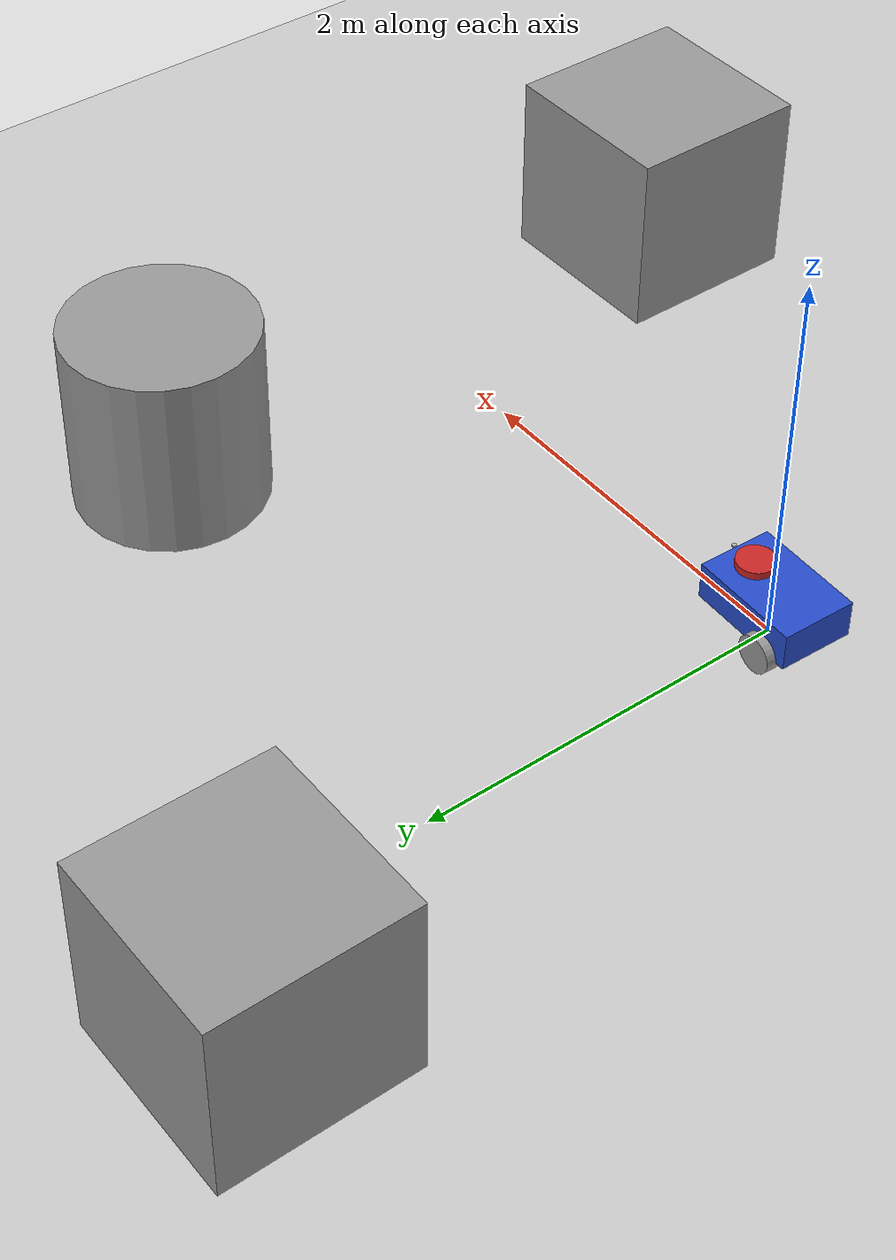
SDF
<sdf version="1.7">
 <world name="default">
  <light name="sun" type="directional">
   <pose>0 0 10 0 -0 0</pose>
   <diffuse>0.8 0.8 0.8 1</diffuse>
   <specular>0.2 0.2 0.2 1</specular>
   <attenuation>
    <range>1000</range>
    <constant>0.9</constant>
    <linear>0.01</linear>
    <quadratic>0.001</quadratic>
   </attenuation>
   <direction>-0.5 0.1 -0.9</direction>
   <spot><inner_angle>0</inner_angle><outer_angle>0</outer_angle><falloff>0</falloff></spot>
  </light>
  <model name="ground_plane">
   <static>1</static>
   <link name="link">
    <collision name="collision">
     <geometry><plane><normal>0 0 1</normal><size>100 100</size></plane></geometry>
     <surface>
      <contact><collide_bitmask>65535</collide_bitmask></contact>
      <friction><ode><mu>100</mu><mu2>50</mu2></ode></friction>
     </surface>
    </collision>
    <visual name="visual">
     <cast_shadows>0</cast_shadows>
     <geometry><plane><normal>0 0 1</normal><size>100 100</size></plane></geometry>
     <material>
      <script><uri>file://media/materials/scripts/gazebo.material</uri><name>Gazebo/Grey</name></script>
     </material>
    </visual>
   </link>
  </model>
  <gravity>0 0 -9.8</gravity>
  <magnetic_field>6e-06 2.3e-05 -4.2e-05</magnetic_field>
  <atmosphere type="adiabatic"/>
  <physics type="ode">
   <max_step_size>0.001</max_step_size>
   <real_time_factor>1</real_time_factor>
   <real_time_update_rate>1000</real_time_update_rate>
  </physics>
  <scene><ambient>0.4 0.4 0.4 1</ambient><background>0.7 0.7 0.7 1</background><shadows>1</shadows></scene>
  <audio><device>default</device></audio>
  <spherical_coordinates>
   <surface_model>EARTH_WGS84</surface_model>
   <latitude_deg>0</latitude_deg>
   <longitude_deg>0</longitude_deg>
   <elevation>0</elevation>
   <heading_deg>0</heading_deg>
  </spherical_coordinates>
  <model name="lidarbot">
   <link name="base_link">
    <inertial>
     <pose>0.038889 0 0.138889 0 -0 0</pose>
     <mass>2.7</mass>
     <inertia>
      <ixx>0.129967</ixx>
      <ixy>0</ixy>
      <ixz>-0.0116667</ixz>
      <iyy>0.141633</iyy>
      <iyz>0</iyz>
      <izz>0.123667</izz>
     </inertia>
    </inertial>
    <collision name="base_link_fixed_joint_lump__chassis_link_collision">
     <pose>0 0 0.2 0 -0 0</pose>
     <geometry><box><size>0.6 0.4 0.2</size></box></geometry>
    </collision>
    <collision name="base_link_fixed_joint_lump__caster_wheel_link_collision_1">
     <pose>0.15 0 0.1 0 -0 0</pose>
     <geometry><sphere><radius>0.1</radius></sphere></geometry>
     <surface><friction><ode><mu>0.001</mu><mu2>0.001</mu2></ode></friction></surface>
    </collision>
    <collision name="base_link_fixed_joint_lump__lidar_link_collision_2">
     <pose>0.15 0 0.29 0 -0 0</pose>
     <geometry><cylinder><length>0.1</length><radius>0.1</radius></cylinder></geometry>
    </collision>
    <visual name="base_link_fixed_joint_lump__chassis_link_visual">
     <pose>0 0 0.2 0 -0 0</pose>
     <geometry><box><size>0.6 0.4 0.2</size></box></geometry>
     <material>
      <script><name>Gazebo/Blue</name><uri>file://media/materials/scripts/gazebo.material</uri></script>
     </material>
    </visual>
    <visual name="base_link_fixed_joint_lump__camera_link_visual_1">
     <pose>0.305 0 0.31 0 -0 0</pose>
     <geometry><box><size>0.02 0.02 0.01</size></box></geometry>
    </visual>
    <visual name="base_link_fixed_joint_lump__caster_wheel_link_visual_2">
     <pose>0.15 0 0.1 0 -0 0</pose>
     <geometry><sphere><radius>0.1</radius></sphere></geometry>
     <material>
      <script><name>Gazebo/Black</name><uri>file://media/materials/scripts/gazebo.material</uri></script>
     </material>
    </visual>
    <visual name="base_link_fixed_joint_lump__lidar_link_visual_3">
     <pose>0.15 0 0.29 0 -0 0</pose>
     <geometry><cylinder><length>0.1</length><radius>0.1</radius></cylinder></geometry>
     <material>
      <script><name>Gazebo/Red</name><uri>file://media/materials/scripts/gazebo.material</uri></script>
     </material>
    </visual>
    <sensor name="laser" type="ray">
     <visualize>0</visualize>
     <update_rate>10</update_rate>
     <ray>
      <scan>
       <horizontal>
        <samples>360</samples>
        <resolution>1</resolution>
        <min_angle>-3.14</min_angle>
        <max_angle>3.14</max_angle>
       </horizontal>
       <vertical><samples>1</samples><min_angle>0</min_angle><max_angle>0</max_angle></vertical>
      </scan>
      <range><min>0.3</min><max>12</max><resolution>0.01</resolution></range>
     </ray>
     <plugin name="laser_controller" filename="libgazebo_ros_ray_sensor.so">
      <ros><argument>~/out:=scan</argument></ros>
      <output_type>sensor_msgs/LaserScan</output_type>
      <frame_name>lidar_link</frame_name>
     </plugin>
     <pose>0.15 0 0.31 0 -0 0</pose>
    </sensor>
    <sensor name="camera" type="depth">
     <visualize>1</visualize>
     <update_rate>10</update_rate>
     <camera>
      <horizontal_fov>1.089</horizontal_fov>
      <image><format>B8G8R8</format><width>640</width><height>480</height></image>
      <clip><near>0.05</near><far>8</far></clip>
     </camera>
     <plugin name="camera_controller" filename="libgazebo_ros_camera.so">
      <frame_name>camera_link_optical</frame_name>
      <min_depth>0.1</min_depth>
      <max_depth>100</max_depth>
     </plugin>
     <pose>0.15 0 0.31 0 -0 0</pose>
    </sensor>
   </link>
   <joint name="left_wheel_chassis_joint" type="revolute">
    <pose relative_to="base_link">-0.15 0.2 0.1 0 -0 0</pose>
    <parent>base_link</parent>
    <child>left_wheel_link</child>
    <axis>
     <xyz>0 1 0</xyz>
     <limit><lower>-1e+16</lower><upper>1e+16</upper></limit>
     <dynamics><spring_reference>0</spring_reference><spring_stiffness>0</spring_stiffness></dynamics>
    </axis>
   </joint>
   <link name="left_wheel_link">
    <pose relative_to="left_wheel_chassis_joint">0 0 0 0 -0 0</pose>
    <inertial>
     <mass>0.3</mass>
     <inertia><ixx>0.005</ixx><ixy>0</ixy><ixz>0</ixz><iyy>0.005</iyy><iyz>0</iyz><izz>0.005</izz></inertia>
    </inertial>
    <collision name="left_wheel_link_collision">
     <pose>0 0 0 1.57 -0 0</pose>
     <geometry><cylinder><length>0.1</length><radius>0.1</radius></cylinder></geometry>
    </collision>
    <visual name="left_wheel_link_visual">
     <pose>0 0 0 1.57 -0 0</pose>
     <geometry><cylinder><length>0.1</length><radius>0.1</radius></cylinder></geometry>
     <material>
      <script><name>Gazebo/Grey</name><uri>file://media/materials/scripts/gazebo.material</uri></script>
     </material>
    </visual>
   </link>
   <joint name="right_wheel_chassis_joint" type="revolute">
    <pose relative_to="base_link">-0.15 -0.2 0.1 3.14 -0 0</pose>
    <parent>base_link</parent>
    <child>right_wheel_link</child>
    <axis>
     <xyz>0 -1 0</xyz>
     <limit><lower>-1e+16</lower><upper>1e+16</upper></limit>
     <dynamics><spring_reference>0</spring_reference><spring_stiffness>0</spring_stiffness></dynamics>
    </axis>
   </joint>
   <link name="right_wheel_link">
    <pose relative_to="right_wheel_chassis_joint">0 0 0 0 -0 0</pose>
    <inertial>
     <mass>0.3</mass>
     <inertia><ixx>0.005</ixx><ixy>0</ixy><ixz>0</ixz><iyy>0.005</iyy><iyz>0</iyz><izz>0.005</izz></inertia>
    </inertial>
    <collision name="right_wheel_link_collision">
     <pose>0 0 0 1.57 -0 0</pose>
     <geometry><cylinder><length>0.1</length><radius>0.1</radius></cylinder></geometry>
    </collision>
    <visual name="right_wheel_link_visual">
     <pose>0 0 0 1.57 -0 0</pose>
     <geometry><cylinder><length>0.1</length><radius>0.1</radius></cylinder></geometry>
     <material>
      <script><name>Gazebo/Grey</name><uri>file://media/materials/scripts/gazebo.material</uri></script>
     </material>
    </visual>
   </link>
   <static>0</static>
   <plugin name="gazebo_ros2_control" filename="libgazebo_ros2_control.so">
    <parameters>/home/user/ros2_ws/src/lidarbot1/config/controllers.yaml</parameters>
   </plugin>
   <pose>-0.00837 -0.010667 4.5e-05 -0.000198 0.000298 -0.033272</pose>
  </model>
  <model name="unit_box">
   <pose>2.67048 -1.54138 0.499995 0 1e-05 0</pose>
   <link name="link">
    <inertial>
     <mass>1</mass>
     <inertia>
      <ixx>0.166667</ixx>
      <ixy>0</ixy>
      <ixz>0</ixz>
      <iyy>0.166667</iyy>
      <iyz>0</iyz>
      <izz>0.166667</izz>
     </inertia>
    </inertial>
    <collision name="collision"><geometry><box><size>1 1 1</size></box></geometry></collision>
    <visual name="visual">
     <geometry><box><size>1 1 1</size></box></geometry>
     <material>
      <script><name>Gazebo/Grey</name><uri>file://media/materials/scripts/gazebo.material</uri></script>
     </material>
    </visual>
   </link>
  </model>
  <model name="unit_cylinder">
   <pose>2.55942 1.67399 0.499993 -3e-06 -4e-06 -0</pose>
   <link name="link">
    <inertial>
     <mass>1</mass>
     <inertia><ixx>0.145833</ixx><ixy>0</ixy><ixz>0</ixz><iyy>0.145833</iyy><iyz>0</iyz><izz>0.125</izz></inertia>
    </inertial>
    <collision name="collision">
     <geometry><cylinder><radius>0.5</radius><length>1</length></cylinder></geometry>
    </collision>
    <visual name="visual">
     <geometry><cylinder><radius>0.5</radius><length>1</length></cylinder></geometry>
     <material>
      <script><name>Gazebo/Grey</name><uri>file://media/materials/scripts/gazebo.material</uri></script>
     </material>
    </visual>
   </link>
  </model>
  <model name="unit_box_0">
   <pose>-0.522643 3.26886 0.5 0 -0 0</pose>
   <link name="link">
    <inertial>
     <mass>1</mass>
     <inertia>
      <ixx>0.166667</ixx>
      <ixy>0</ixy>
      <ixz>0</ixz>
      <iyy>0.166667</iyy>
      <iyz>0</iyz>
      <izz>0.166667</izz>
     </inertia>
    </inertial>
    <collision name="collision"><geometry><box><size>1 1 1</size></box></geometry></collision>
    <visual name="visual">
     <geometry><box><size>1 1 1</size></box></geometry>
     <material>
      <script><name>Gazebo/Grey</name><uri>file://media/materials/scripts/gazebo.material</uri></script>
     </material>
    </visual>
   </link>
  </model>
 </world>
</sdf>
